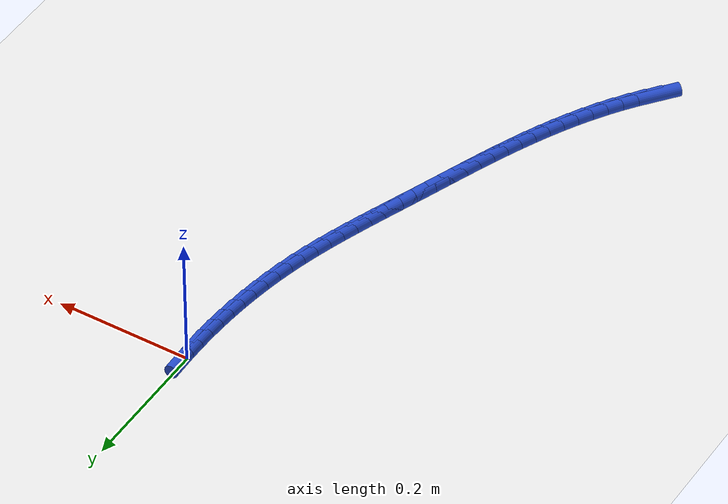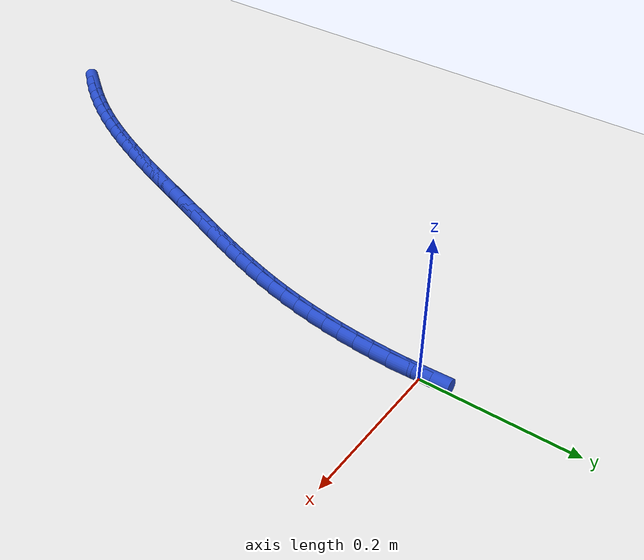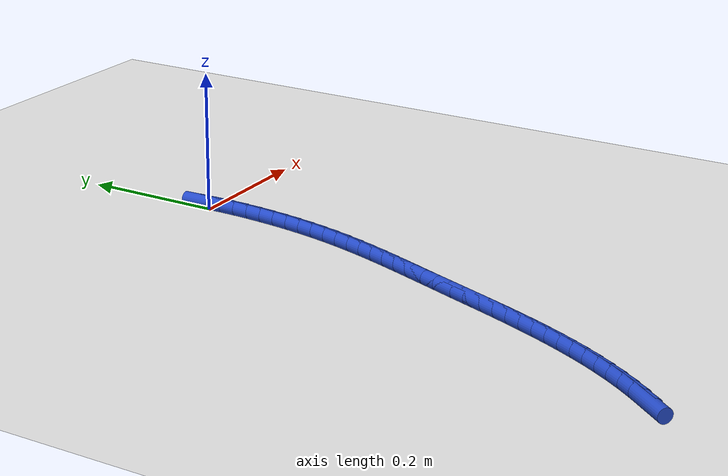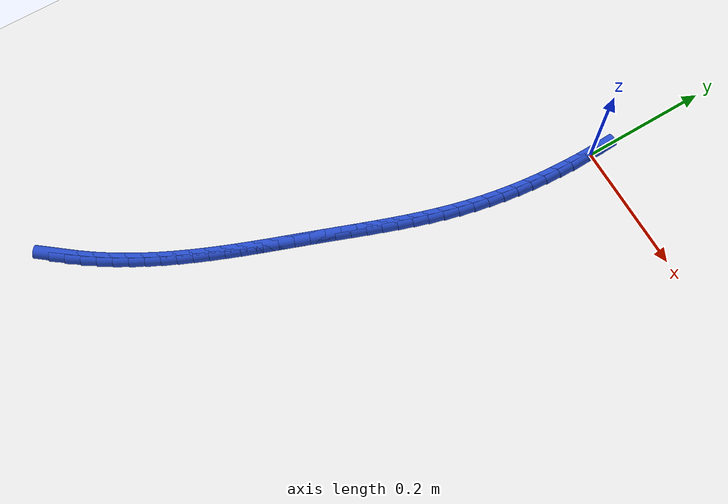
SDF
<sdf version="1.6">
 <world name="default">
  <model name="ground_plane">
   <static>1</static>
   <link name="link">
    <collision name="collision">
     <geometry><plane><normal>0 0 1</normal><size>100 100</size></plane></geometry>
     <surface><friction><ode><mu>100</mu><mu2>50</mu2></ode></friction></surface>
    </collision>
    <visual name="visual">
     <cast_shadows>0</cast_shadows>
     <geometry><plane><normal>0 0 1</normal><size>100 100</size></plane></geometry>
     <material>
      <script><uri>file://media/materials/scripts/gazebo.material</uri><name>Gazebo/WhiteGlow</name></script>
     </material>
    </visual>
   </link>
  </model>
  <model name="line">
   <link name="link_255">
    <pose>-0.26344273231230697 -0.7660525086902121 0.01 0 1.57 0.9025446051524817</pose>
    <collision name="collision">
     <geometry><cylinder><radius>0.01</radius><length>0.08</length></cylinder></geometry>
    </collision>
    <visual name="visual">
     <material>
      <script><name>Gazebo/Blue</name><uri>file://media/materials/scripts/gazebo.material</uri></script>
     </material>
     <geometry><cylinder><radius>0.01</radius><length>0.08</length></cylinder></geometry>
    </visual>
   </link>
   <link name="link_256">
    <pose>-0.248634140917596 -0.7472935056098738 0.01 0 1.57 0.9420975465018625</pose>
    <collision name="collision">
     <geometry><cylinder><radius>0.01</radius><length>0.08</length></cylinder></geometry>
    </collision>
    <visual name="visual">
     <material>
      <script><name>Gazebo/Blue</name><uri>file://media/materials/scripts/gazebo.material</uri></script>
     </material>
     <geometry><cylinder><radius>0.01</radius><length>0.08</length></cylinder></geometry>
    </visual>
   </link>
   <link name="link_257">
    <pose>-0.23462828898128577 -0.728031511067825 0.01 0 1.57 0.9798235785985826</pose>
    <collision name="collision">
     <geometry><cylinder><radius>0.01</radius><length>0.08</length></cylinder></geometry>
    </collision>
    <visual name="visual">
     <material>
      <script><name>Gazebo/Blue</name><uri>file://media/materials/scripts/gazebo.material</uri></script>
     </material>
     <geometry><cylinder><radius>0.01</radius><length>0.08</length></cylinder></geometry>
    </visual>
   </link>
   <link name="link_258">
    <pose>-0.22143310505820663 -0.7083655433143433 0.01 0 1.57 1.0152618060756111</pose>
    <collision name="collision">
     <geometry><cylinder><radius>0.01</radius><length>0.08</length></cylinder></geometry>
    </collision>
    <visual name="visual">
     <material>
      <script><name>Gazebo/Blue</name><uri>file://media/materials/scripts/gazebo.material</uri></script>
     </material>
     <geometry><cylinder><radius>0.01</radius><length>0.08</length></cylinder></geometry>
    </visual>
   </link>
   <link name="link_259">
    <pose>-0.20900510179671275 -0.6883444716351503 0.01 0 1.57 1.0480440635146084</pose>
    <collision name="collision">
     <geometry><cylinder><radius>0.01</radius><length>0.08</length></cylinder></geometry>
    </collision>
    <visual name="visual">
     <material>
      <script><name>Gazebo/Blue</name><uri>file://media/materials/scripts/gazebo.material</uri></script>
     </material>
     <geometry><cylinder><radius>0.01</radius><length>0.08</length></cylinder></geometry>
    </visual>
   </link>
   <link name="link_260">
    <pose>-0.19728085027911502 -0.6679977151310493 0.01 0 1.57 1.0780395641088008</pose>
    <collision name="collision">
     <geometry><cylinder><radius>0.01</radius><length>0.08</length></cylinder></geometry>
    </collision>
    <visual name="visual">
     <material>
      <script><name>Gazebo/Blue</name><uri>file://media/materials/scripts/gazebo.material</uri></script>
     </material>
     <geometry><cylinder><radius>0.01</radius><length>0.08</length></cylinder></geometry>
    </visual>
   </link>
   <link name="link_261">
    <pose>-0.1861968777364047 -0.6473546501320666 0.01 0 1.57 1.1051548130946414</pose>
    <collision name="collision">
     <geometry><cylinder><radius>0.01</radius><length>0.08</length></cylinder></geometry>
    </collision>
    <visual name="visual">
     <material>
      <script><name>Gazebo/Blue</name><uri>file://media/materials/scripts/gazebo.material</uri></script>
     </material>
     <geometry><cylinder><radius>0.01</radius><length>0.08</length></cylinder></geometry>
    </visual>
   </link>
   <link name="link_262">
    <pose>-0.17568971139957304 -0.6264446529682285 0.01 0 1.57 1.1293273474883945</pose>
    <collision name="collision">
     <geometry><cylinder><radius>0.01</radius><length>0.08</length></cylinder></geometry>
    </collision>
    <visual name="visual">
     <material>
      <script><name>Gazebo/Blue</name><uri>file://media/materials/scripts/gazebo.material</uri></script>
     </material>
     <geometry><cylinder><radius>0.01</radius><length>0.08</length></cylinder></geometry>
    </visual>
   </link>
   <link name="link_263">
    <pose>-0.16569587849961132 -0.6052970999695612 0.01 0 1.57 1.1505196290408146</pose>
    <collision name="collision">
     <geometry><cylinder><radius>0.01</radius><length>0.08</length></cylinder></geometry>
    </collision>
    <visual name="visual">
     <material>
      <script><name>Gazebo/Blue</name><uri>file://media/materials/scripts/gazebo.material</uri></script>
     </material>
     <geometry><cylinder><radius>0.01</radius><length>0.08</length></cylinder></geometry>
    </visual>
   </link>
   <link name="link_264">
    <pose>-0.15615190626751077 -0.5839413674660909 0.01 0 1.57 1.1687130402576789</pose>
    <collision name="collision">
     <geometry><cylinder><radius>0.01</radius><length>0.08</length></cylinder></geometry>
    </collision>
    <visual name="visual">
     <material>
      <script><name>Gazebo/Blue</name><uri>file://media/materials/scripts/gazebo.material</uri></script>
     </material>
     <geometry><cylinder><radius>0.01</radius><length>0.08</length></cylinder></geometry>
    </visual>
   </link>
   <link name="link_265">
    <pose>-0.14699432193426298 -0.562406831787845 0.01 0 1.57 1.1839023262408623</pose>
    <collision name="collision">
     <geometry><cylinder><radius>0.01</radius><length>0.08</length></cylinder></geometry>
    </collision>
    <visual name="visual">
     <material>
      <script><name>Gazebo/Blue</name><uri>file://media/materials/scripts/gazebo.material</uri></script>
     </material>
     <geometry><cylinder><radius>0.01</radius><length>0.08</length></cylinder></geometry>
    </visual>
   </link>
   <link name="link_266">
    <pose>-0.1381596527308586 -0.5407228692648477 0.01 0 1.57 1.1960906998105287</pose>
    <collision name="collision">
     <geometry><cylinder><radius>0.01</radius><length>0.08</length></cylinder></geometry>
    </collision>
    <visual name="visual">
     <material>
      <script><name>Gazebo/Blue</name><uri>file://media/materials/scripts/gazebo.material</uri></script>
     </material>
     <geometry><cylinder><radius>0.01</radius><length>0.08</length></cylinder></geometry>
    </visual>
   </link>
   <link name="link_267">
    <pose>-0.1295844258882892 -0.5189188562271266 0.01 0 1.57 1.2052857275192634</pose>
    <collision name="collision">
     <geometry><cylinder><radius>0.01</radius><length>0.08</length></cylinder></geometry>
    </collision>
    <visual name="visual">
     <material>
      <script><name>Gazebo/Blue</name><uri>file://media/materials/scripts/gazebo.material</uri></script>
     </material>
     <geometry><cylinder><radius>0.01</radius><length>0.08</length></cylinder></geometry>
    </visual>
   </link>
   <link name="link_268">
    <pose>-0.12120516863754613 -0.49702416900470786 0.01 0 1.57 1.2114960434912767</pose>
    <collision name="collision">
     <geometry><cylinder><radius>0.01</radius><length>0.08</length></cylinder></geometry>
    </collision>
    <visual name="visual">
     <material>
      <script><name>Gazebo/Blue</name><uri>file://media/materials/scripts/gazebo.material</uri></script>
     </material>
     <geometry><cylinder><radius>0.01</radius><length>0.08</length></cylinder></geometry>
    </visual>
   </link>
   <link name="link_269">
    <pose>-0.11295840820962053 -0.47506818392761746 0.01 0 1.57 1.2147288946838553</pose>
    <collision name="collision">
     <geometry><cylinder><radius>0.01</radius><length>0.08</length></cylinder></geometry>
    </collision>
    <visual name="visual">
     <material>
      <script><name>Gazebo/Blue</name><uri>file://media/materials/scripts/gazebo.material</uri></script>
     </material>
     <geometry><cylinder><radius>0.01</radius><length>0.08</length></cylinder></geometry>
    </visual>
   </link>
   <link name="link_270">
    <pose>-0.10478067183550369 -0.45308027732588185 0.01 0 1.57 1.2149885004384606</pose>
    <collision name="collision">
     <geometry><cylinder><radius>0.01</radius><length>0.08</length></cylinder></geometry>
    </collision>
    <visual name="visual">
     <material>
      <script><name>Gazebo/Blue</name><uri>file://media/materials/scripts/gazebo.material</uri></script>
     </material>
     <geometry><cylinder><radius>0.01</radius><length>0.08</length></cylinder></geometry>
    </visual>
   </link>
   <link name="link_271">
    <pose>-0.09660848674618693 -0.4310898255295275 0.01 0 1.57 1.2124065385683687</pose>
    <collision name="collision">
     <geometry><cylinder><radius>0.01</radius><length>0.08</length></cylinder></geometry>
    </collision>
    <visual name="visual">
     <material>
      <script><name>Gazebo/Blue</name><uri>file://media/materials/scripts/gazebo.material</uri></script>
     </material>
     <geometry><cylinder><radius>0.01</radius><length>0.08</length></cylinder></geometry>
    </visual>
   </link>
   <link name="link_272">
    <pose>-0.08838125009229843 -0.40912508491040384 0.01 0 1.57 1.2101442753511615</pose>
    <collision name="collision">
     <geometry><cylinder><radius>0.01</radius><length>0.08</length></cylinder></geometry>
    </collision>
    <visual name="visual">
     <material>
      <script><name>Gazebo/Blue</name><uri>file://media/materials/scripts/gazebo.material</uri></script>
     </material>
     <geometry><cylinder><radius>0.01</radius><length>0.08</length></cylinder></geometry>
    </visual>
   </link>
   <link name="link_273">
    <pose>-0.08010748384525258 -0.3871873365525333 0.01 0 1.57 1.2114485715756977</pose>
    <collision name="collision">
     <geometry><cylinder><radius>0.01</radius><length>0.08</length></cylinder></geometry>
    </collision>
    <visual name="visual">
     <material>
      <script><name>Gazebo/Blue</name><uri>file://media/materials/scripts/gazebo.material</uri></script>
     </material>
     <geometry><cylinder><radius>0.01</radius><length>0.08</length></cylinder></geometry>
    </visual>
   </link>
   <link name="link_274">
    <pose>-0.07186661193743685 -0.3652501927404678 0.01 0 1.57 1.216473293917533</pose>
    <collision name="collision">
     <geometry><cylinder><radius>0.01</radius><length>0.08</length></cylinder></geometry>
    </collision>
    <visual name="visual">
     <material>
      <script><name>Gazebo/Blue</name><uri>file://media/materials/scripts/gazebo.material</uri></script>
     </material>
     <geometry><cylinder><radius>0.01</radius><length>0.08</length></cylinder></geometry>
    </visual>
   </link>
   <link name="link_275">
    <pose>-0.06374128372070915 -0.34328600707023643 0.01 0 1.57 1.2252270541365247</pose>
    <collision name="collision">
     <geometry><cylinder><radius>0.01</radius><length>0.08</length></cylinder></geometry>
    </collision>
    <visual name="visual">
     <material>
      <script><name>Gazebo/Blue</name><uri>file://media/materials/scripts/gazebo.material</uri></script>
     </material>
     <geometry><cylinder><radius>0.01</radius><length>0.08</length></cylinder></geometry>
    </visual>
   </link>
   <link name="link_276">
    <pose>-0.05581414854692741 -0.32126713313786814 0.01 0 1.57 1.2377187293206662</pose>
    <collision name="collision">
     <geometry><cylinder><radius>0.01</radius><length>0.08</length></cylinder></geometry>
    </collision>
    <visual name="visual">
     <material>
      <script><name>Gazebo/Blue</name><uri>file://media/materials/scripts/gazebo.material</uri></script>
     </material>
     <geometry><cylinder><radius>0.01</radius><length>0.08</length></cylinder></geometry>
    </visual>
   </link>
   <link name="link_277">
    <pose>-0.04816785576794952 -0.2991659245393917 0.01 0 1.57 1.2539538010039835</pose>
    <collision name="collision">
     <geometry><cylinder><radius>0.01</radius><length>0.08</length></cylinder></geometry>
    </collision>
    <visual name="visual">
     <material>
      <script><name>Gazebo/Blue</name><uri>file://media/materials/scripts/gazebo.material</uri></script>
     </material>
     <geometry><cylinder><radius>0.01</radius><length>0.08</length></cylinder></geometry>
    </visual>
   </link>
   <link name="link_278">
    <pose>-0.04088505473563341 -0.27695473487083627 0.01 0 1.57 1.2739291018607966</pose>
    <collision name="collision">
     <geometry><cylinder><radius>0.01</radius><length>0.08</length></cylinder></geometry>
    </collision>
    <visual name="visual">
     <material>
      <script><name>Gazebo/Blue</name><uri>file://media/materials/scripts/gazebo.material</uri></script>
     </material>
     <geometry><cylinder><radius>0.01</radius><length>0.08</length></cylinder></geometry>
    </visual>
   </link>
   <link name="link_279">
    <pose>-0.034048394801837016 -0.2546059177282307 0.01 0 1.57 1.2976260112692157</pose>
    <collision name="collision">
     <geometry><cylinder><radius>0.01</radius><length>0.08</length></cylinder></geometry>
    </collision>
    <visual name="visual">
     <material>
      <script><name>Gazebo/Blue</name><uri>file://media/materials/scripts/gazebo.material</uri></script>
     </material>
     <geometry><cylinder><radius>0.01</radius><length>0.08</length></cylinder></geometry>
    </visual>
   </link>
   <link name="link_280">
    <pose>-0.027740525318418426 -0.23209182670760484 0.01 0 1.57 1.324991444128976</pose>
    <collision name="collision">
     <geometry><cylinder><radius>0.01</radius><length>0.08</length></cylinder></geometry>
    </collision>
    <visual name="visual">
     <material>
      <script><name>Gazebo/Blue</name><uri>file://media/materials/scripts/gazebo.material</uri></script>
     </material>
     <geometry><cylinder><radius>0.01</radius><length>0.08</length></cylinder></geometry>
    </visual>
   </link>
   <link name="link_281">
    <pose>-0.022043873281242576 -0.20938496866142195 0.01 0 1.57 1.354596836140521</pose>
    <collision name="collision">
     <geometry><cylinder><radius>0.01</radius><length>0.08</length></cylinder></geometry>
    </collision>
    <visual name="visual">
     <material>
      <script><name>Gazebo/Blue</name><uri>file://media/materials/scripts/gazebo.material</uri></script>
     </material>
     <geometry><cylinder><radius>0.01</radius><length>0.08</length></cylinder></geometry>
    </visual>
   </link>
   <link name="link_282">
    <pose>-0.017012615553180475 -0.18647732153735655 0.01 0 1.57 1.3837686167393706</pose>
    <collision name="collision">
     <geometry><cylinder><radius>0.01</radius><length>0.08</length></cylinder></geometry>
    </collision>
    <visual name="visual">
     <material>
      <script><name>Gazebo/Blue</name><uri>file://media/materials/scripts/gazebo.material</uri></script>
     </material>
     <geometry><cylinder><radius>0.01</radius><length>0.08</length></cylinder></geometry>
    </visual>
   </link>
   <link name="link_283">
    <pose>-0.012645324291260718 -0.16339918821846214 0.01 0 1.57 1.4122657742481934</pose>
    <collision name="collision">
     <geometry><cylinder><radius>0.01</radius><length>0.08</length></cylinder></geometry>
    </collision>
    <visual name="visual">
     <material>
      <script><name>Gazebo/Blue</name><uri>file://media/materials/scripts/gazebo.material</uri></script>
     </material>
     <geometry><cylinder><radius>0.01</radius><length>0.08</length></cylinder></geometry>
    </visual>
   </link>
   <link name="link_284">
    <pose>-0.008934078703699878 -0.14018534678175074 0.01 0 1.57 1.4401633999146062</pose>
    <collision name="collision">
     <geometry><cylinder><radius>0.01</radius><length>0.08</length></cylinder></geometry>
    </collision>
    <visual name="visual">
     <material>
      <script><name>Gazebo/Blue</name><uri>file://media/materials/scripts/gazebo.material</uri></script>
     </material>
     <geometry><cylinder><radius>0.01</radius><length>0.08</length></cylinder></geometry>
    </visual>
   </link>
   <link name="link_285">
    <pose>-0.005870957998714523 -0.1168705753042344 0.01 0 1.57 1.4675369731589942</pose>
    <collision name="collision">
     <geometry><cylinder><radius>0.01</radius><length>0.08</length></cylinder></geometry>
    </collision>
    <visual name="visual">
     <material>
      <script><name>Gazebo/Blue</name><uri>file://media/materials/scripts/gazebo.material</uri></script>
     </material>
     <geometry><cylinder><radius>0.01</radius><length>0.08</length></cylinder></geometry>
    </visual>
   </link>
   <link name="link_286">
    <pose>-0.0034480413845212254 -0.09348965186292517 0.01 0 1.57 1.49446233852623</pose>
    <collision name="collision">
     <geometry><cylinder><radius>0.01</radius><length>0.08</length></cylinder></geometry>
    </collision>
    <visual name="visual">
     <material>
      <script><name>Gazebo/Blue</name><uri>file://media/materials/scripts/gazebo.material</uri></script>
     </material>
     <geometry><cylinder><radius>0.01</radius><length>0.08</length></cylinder></geometry>
    </visual>
   </link>
   <link name="link_287">
    <pose>-0.001657408069336556 -0.07007735453483509 0.01 0 1.57 1.521015789858905</pose>
    <collision name="collision">
     <geometry><cylinder><radius>0.01</radius><length>0.08</length></cylinder></geometry>
    </collision>
    <visual name="visual">
     <material>
      <script><name>Gazebo/Blue</name><uri>file://media/materials/scripts/gazebo.material</uri></script>
     </material>
     <geometry><cylinder><radius>0.01</radius><length>0.08</length></cylinder></geometry>
    </visual>
   </link>
   <link name="link_288">
    <pose>-0.0004911372613770827 -0.04666846139697618 0.01 0 1.57 1.5472742487896811</pose>
    <collision name="collision">
     <geometry><cylinder><radius>0.01</radius><length>0.08</length></cylinder></geometry>
    </collision>
    <visual name="visual">
     <material>
      <script><name>Gazebo/Blue</name><uri>file://media/materials/scripts/gazebo.material</uri></script>
     </material>
     <geometry><cylinder><radius>0.01</radius><length>0.08</length></cylinder></geometry>
    </visual>
   </link>
   <link name="link_289">
    <pose>5.869183114062338e-05 -0.023297750526360465 0.01 0 1.57 -1.5682771262002249</pose>
    <collision name="collision">
     <geometry><cylinder><radius>0.01</radius><length>0.08</length></cylinder></geometry>
    </collision>
    <visual name="visual">
     <material>
      <script><name>Gazebo/Blue</name><uri>file://media/materials/scripts/gazebo.material</uri></script>
     </material>
     <geometry><cylinder><radius>0.01</radius><length>0.08</length></cylinder></geometry>
    </visual>
   </link>
   <link name="link_290">
    <pose>-7.37257477290143e-18 -4.85722573273506e-17 0.01 0 1.57 -1.5423739862352177</pose>
    <collision name="collision">
     <geometry><cylinder><radius>0.01</radius><length>0.08</length></cylinder></geometry>
    </collision>
    <visual name="visual">
     <material>
      <script><name>Gazebo/Blue</name><uri>file://media/materials/scripts/gazebo.material</uri></script>
     </material>
     <geometry><cylinder><radius>0.01</radius><length>0.08</length></cylinder></geometry>
    </visual>
   </link>
  </model>
 </world>
</sdf>
